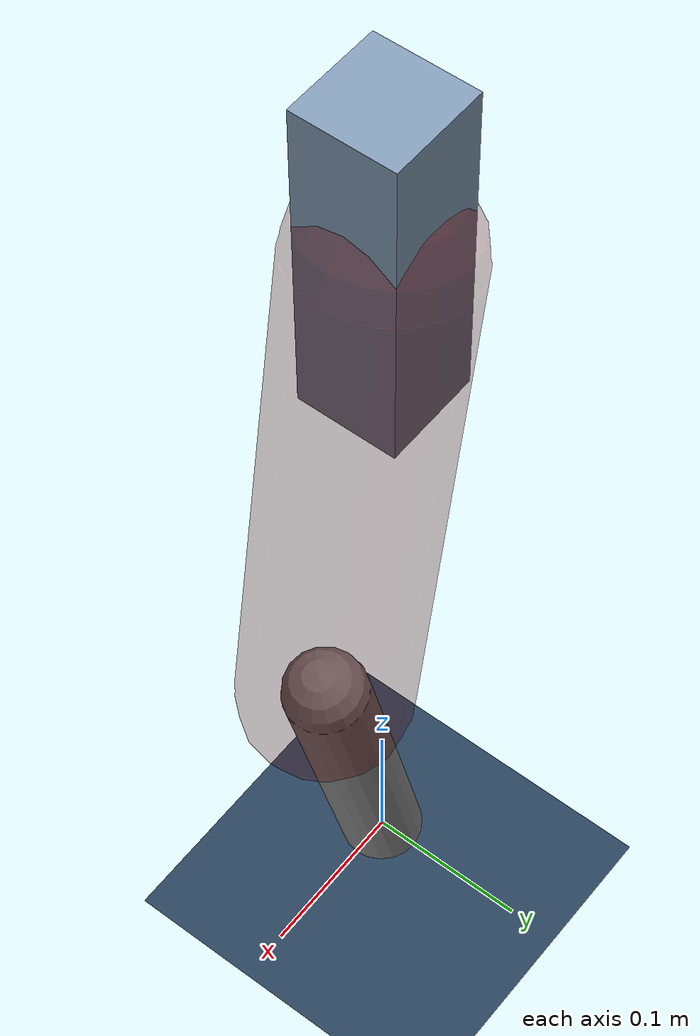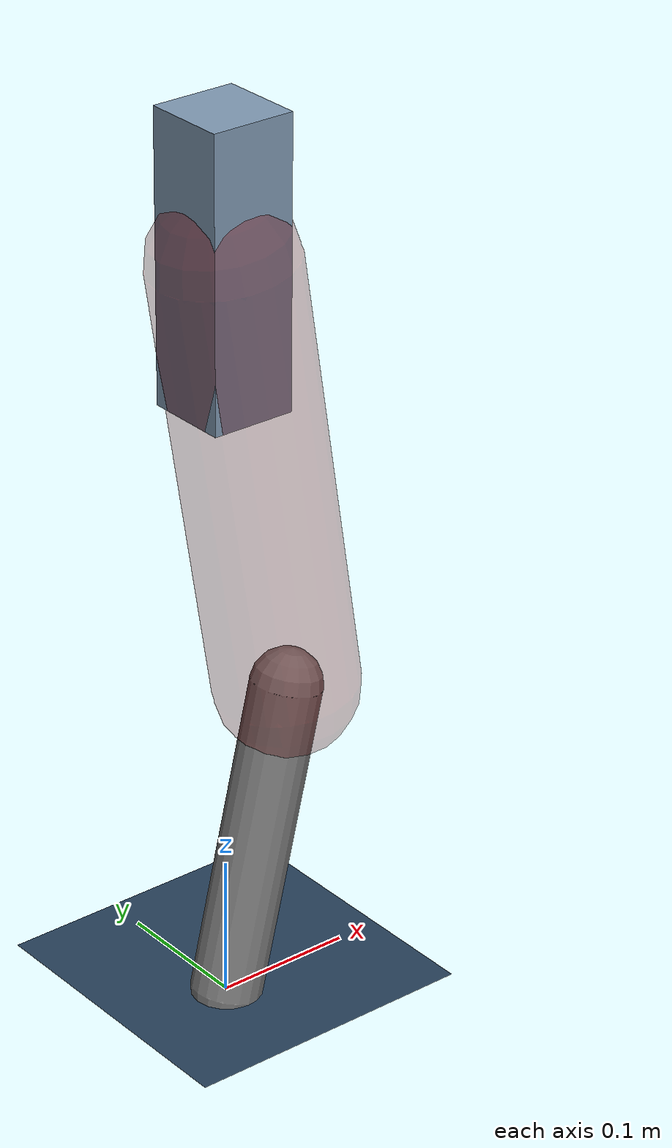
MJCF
<mujoco model="Hopper2D">
	<compiler inertiafromgeom="true" angle="radian" />
	<option timestep="0.001" integrator="implicit" cone="elliptic" solver="Newton" tolerance="1e-10" />

	<default>
		<geom contype="1" conaffinity="1" condim="3" friction="2 0.005 0.0001" solref="0.005 1" />
		<joint limited="true" damping="0.1" />
	</default>

	<asset>
		<texture name="skybox" type="skybox" builtin="gradient" rgb1=".4 .6 .8" rgb2="0 0 0" width="800" height="800" />
		<texture name="grid" type="2d" builtin="checker" rgb1=".1 .2 .3" rgb2=".2 .3 .4" width="300" height="300" mark="edge" markrgb=".2 .3 .4" />
		<material name="ground" texture="grid" texrepeat="1 1" texuniform="true" reflectance="0.1" />
		<material name="leg" rgba="0.5 0.6 0.7 1" />
	</asset>

	<worldbody>

		<geom name="floor" type="plane" size="5 5 0.25" material="ground" />

		<light directional="false" diffuse="0.8 0.8 0.8" specular="0.3 0.3 0.3" pos="0 0 2" dir="0 0 -1" />
		<light mode="targetbodycom" target="base" directional="false" diffuse="0.8 0.8 0.8" specular="0.3 0.3 0.3" pos="0 0 2" dir="0 0 -1" />

		<camera name="fixed" pos="0 -2 1" xyaxes="1 0 0 0 0 1" />
		<camera name="tracking" mode="trackcom" pos="0 -3 1" />

		<body name="root" pos="0 0 0.5373931839296721">
			<joint name="slide_x" type="slide" axis="1 0 0" range="-100 100" />
			<joint name="slide_z" type="slide" axis="0 0 1" range="0 10" />

			<body name="base" pos="0 0 0">
				<geom name="torso" type="box" size="0.03 0.03 0.1" mass="1.587" material="leg" />

				<body name="link1" pos="0 0 0" euler="0 1.4100727271353022 0">
					<joint type="hinge" axis="0 -1 0" pos="0 0 0" name="hinge1" limited="true" range="-3.14 3.14" stiffness="0" damping="0.1" />
					<geom name="thigh" type="capsule" fromto="0 0 0 0.32044854235589604 0 0" size="0.05" rgba="0.5 0 0 0.3" mass="1.0444559185965088" />

					<body name="link2" pos="0.32044854235589604 0 0" euler="0 0.3886600506019491 0">
						<joint type="hinge" axis="0 -1 0" pos="0 0 0" name="hinge2" limited="true" range="-3.14 3.14" stiffness="0" damping="0.1" />
						<geom name="shank" type="capsule" fromto="0 0 0 0.22694464157377606 0 0" size="0.025" mass="0.4234557132590208" />

					</body>
				</body>
			</body>
		</body>
	</worldbody>

	<actuator>
		<motor name="torque1" joint="hinge1" ctrlrange="-27.524791330789817 27.524791330789817" ctrllimited="true" gear="1" />
		<motor name="torque2" joint="hinge2" ctrlrange="-32.48400374397917 32.48400374397917" ctrllimited="true" gear="1" />
	</actuator>
</mujoco>
